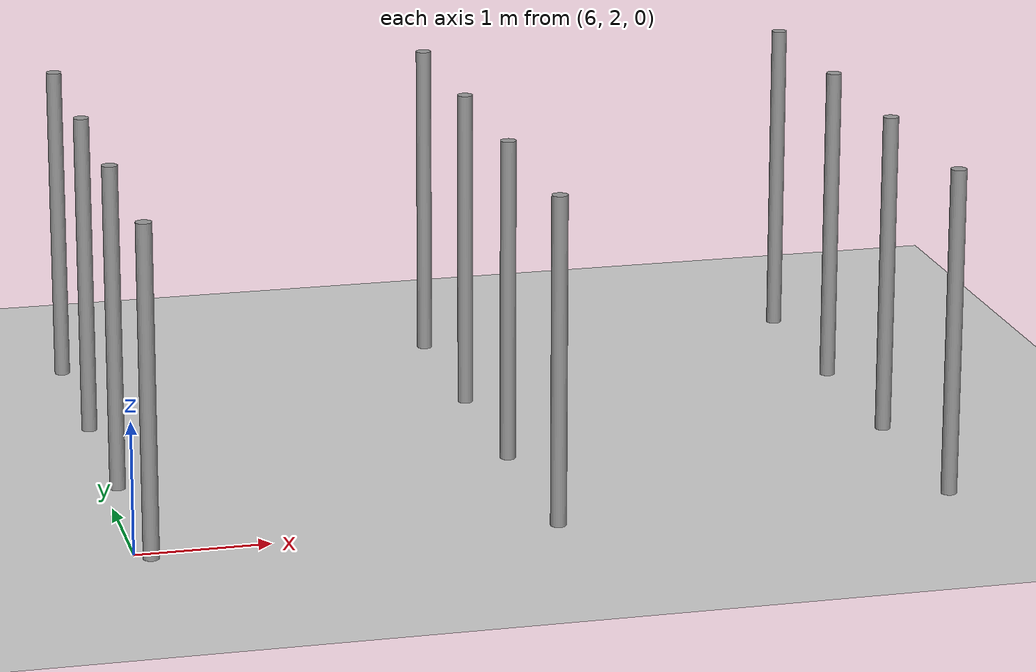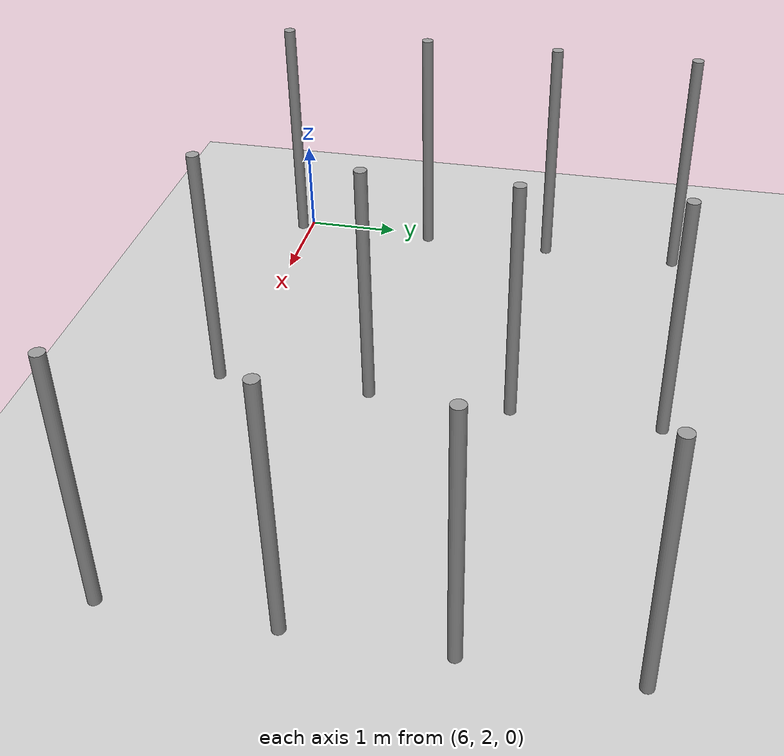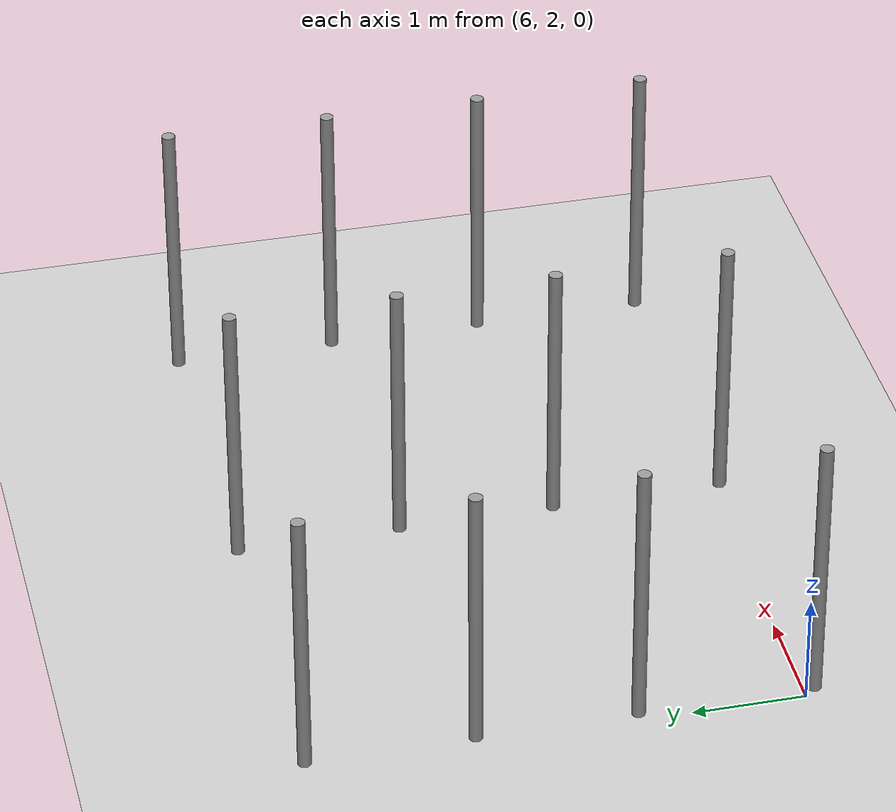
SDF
<sdf version="1.6">
 <world name="default">
  <model name="ground_plane">
   <static>1</static>
   <link name="link">
    <collision name="collision">
     <geometry><plane><normal>0 0 1</normal><size>100 100</size></plane></geometry>
     <surface><friction><ode><mu>100</mu><mu2>50</mu2></ode></friction></surface>
    </collision>
    <visual name="visual">
     <cast_shadows>0</cast_shadows>
     <geometry><plane><normal>0 0 1</normal><size>100 100</size></plane></geometry>
     <material>
      <script><uri>file://media/materials/scripts/gazebo.material</uri><name>Gazebo/Grey</name></script>
     </material>
    </visual>
   </link>
  </model>
  <model name="pole">
   <link name="link_0">
    <inertial>
     <mass>0.0364582</mass>
     <inertia>
      <ixx>0.00312124</ixx>
      <ixy>0</ixy>
      <ixz>0</ixz>
      <iyy>0.00312124</iyy>
      <iyz>0</iyz>
      <izz>0.00016615</izz>
     </inertia>
    </inertial>
    <visual name="visual">
     <geometry><cylinder><radius>0.06</radius><length>2.5</length></cylinder></geometry>
     <material>
      <lighting>1</lighting>
      <script><uri>file://media/materials/scripts/gazebo.material</uri><name>Gazebo/Grey</name></script>
      <ambient>0.3 0.3 0.3 1</ambient>
      <diffuse>0.7 0.7 0.7 1</diffuse>
      <specular>0.01 0.01 0.01 1</specular>
      <emissive>0 0 0 1</emissive>
      <shader type="vertex"><normal_map>__default__</normal_map></shader>
     </material>
    </visual>
    <collision name="collision">
     <geometry><cylinder><radius>0.06</radius><length>2.5</length></cylinder></geometry>
     <surface>
      <friction>
       <ode><mu>1</mu><mu2>1</mu2><fdir1>0 0 0</fdir1><slip1>0</slip1><slip2>0</slip2></ode>
       <torsional>
        <coefficient>1</coefficient>
        <patch_radius>0</patch_radius>
        <surface_radius>0</surface_radius>
        <use_patch_radius>1</use_patch_radius>
        <ode><slip>0</slip></ode>
       </torsional>
      </friction>
      <bounce><restitution_coefficient>0</restitution_coefficient><threshold>1e+06</threshold></bounce>
      <contact>
       <collide_without_contact>0</collide_without_contact>
       <collide_without_contact_bitmask>1</collide_without_contact_bitmask>
       <collide_bitmask>1</collide_bitmask>
       <ode>
        <soft_cfm>0</soft_cfm>
        <soft_erp>0.2</soft_erp>
        <kp>1e+13</kp>
        <kd>1</kd>
        <max_vel>0.01</max_vel>
        <min_depth>0</min_depth>
       </ode>
       <bullet>
        <split_impulse>1</split_impulse>
        <split_impulse_penetration_threshold>-0.01</split_impulse_penetration_threshold>
        <soft_cfm>0</soft_cfm>
        <soft_erp>0.2</soft_erp>
        <kp>1e+13</kp>
        <kd>1</kd>
       </bullet>
      </contact>
     </surface>
    </collision>
   </link>
   <static>0</static>
   <pose>6.10658 1.89886 1.24999 0 -1e-06 -0.054616</pose>
  </model>
  <model name="pole_0">
   <link name="link_0">
    <inertial>
     <mass>0.0364582</mass>
     <inertia>
      <ixx>0.00312124</ixx>
      <ixy>0</ixy>
      <ixz>0</ixz>
      <iyy>0.00312124</iyy>
      <iyz>0</iyz>
      <izz>0.00016615</izz>
     </inertia>
    </inertial>
    <visual name="visual">
     <geometry><cylinder><radius>0.06</radius><length>2.5</length></cylinder></geometry>
     <material>
      <lighting>1</lighting>
      <script><uri>file://media/materials/scripts/gazebo.material</uri><name>Gazebo/Grey</name></script>
      <ambient>0.3 0.3 0.3 1</ambient>
      <diffuse>0.7 0.7 0.7 1</diffuse>
      <specular>0.01 0.01 0.01 1</specular>
      <emissive>0 0 0 1</emissive>
      <shader type="vertex"><normal_map>__default__</normal_map></shader>
     </material>
    </visual>
    <collision name="collision">
     <geometry><cylinder><radius>0.06</radius><length>2.5</length></cylinder></geometry>
     <surface>
      <friction>
       <ode><mu>1</mu><mu2>1</mu2><fdir1>0 0 0</fdir1><slip1>0</slip1><slip2>0</slip2></ode>
       <torsional>
        <coefficient>1</coefficient>
        <patch_radius>0</patch_radius>
        <surface_radius>0</surface_radius>
        <use_patch_radius>1</use_patch_radius>
        <ode><slip>0</slip></ode>
       </torsional>
      </friction>
      <bounce><restitution_coefficient>0</restitution_coefficient><threshold>1e+06</threshold></bounce>
      <contact>
       <collide_without_contact>0</collide_without_contact>
       <collide_without_contact_bitmask>1</collide_without_contact_bitmask>
       <collide_bitmask>1</collide_bitmask>
       <ode>
        <soft_cfm>0</soft_cfm>
        <soft_erp>0.2</soft_erp>
        <kp>1e+13</kp>
        <kd>1</kd>
        <max_vel>0.01</max_vel>
        <min_depth>0</min_depth>
       </ode>
       <bullet>
        <split_impulse>1</split_impulse>
        <split_impulse_penetration_threshold>-0.01</split_impulse_penetration_threshold>
        <soft_cfm>0</soft_cfm>
        <soft_erp>0.2</soft_erp>
        <kp>1e+13</kp>
        <kd>1</kd>
       </bullet>
      </contact>
     </surface>
    </collision>
   </link>
   <static>0</static>
   <pose>6.1066 3.44486 1.25 -1e-06 -0 -0.024772</pose>
  </model>
  <model name="pole_1">
   <link name="link_0">
    <inertial>
     <mass>0.0364582</mass>
     <inertia>
      <ixx>0.00312124</ixx>
      <ixy>0</ixy>
      <ixz>0</ixz>
      <iyy>0.00312124</iyy>
      <iyz>0</iyz>
      <izz>0.00016615</izz>
     </inertia>
    </inertial>
    <visual name="visual">
     <geometry><cylinder><radius>0.06</radius><length>2.5</length></cylinder></geometry>
     <material>
      <lighting>1</lighting>
      <script><uri>file://media/materials/scripts/gazebo.material</uri><name>Gazebo/Grey</name></script>
      <ambient>0.3 0.3 0.3 1</ambient>
      <diffuse>0.7 0.7 0.7 1</diffuse>
      <specular>0.01 0.01 0.01 1</specular>
      <emissive>0 0 0 1</emissive>
      <shader type="vertex"><normal_map>__default__</normal_map></shader>
     </material>
    </visual>
    <collision name="collision">
     <geometry><cylinder><radius>0.06</radius><length>2.5</length></cylinder></geometry>
     <surface>
      <friction>
       <ode><mu>1</mu><mu2>1</mu2><fdir1>0 0 0</fdir1><slip1>0</slip1><slip2>0</slip2></ode>
       <torsional>
        <coefficient>1</coefficient>
        <patch_radius>0</patch_radius>
        <surface_radius>0</surface_radius>
        <use_patch_radius>1</use_patch_radius>
        <ode><slip>0</slip></ode>
       </torsional>
      </friction>
      <bounce><restitution_coefficient>0</restitution_coefficient><threshold>1e+06</threshold></bounce>
      <contact>
       <collide_without_contact>0</collide_without_contact>
       <collide_without_contact_bitmask>1</collide_without_contact_bitmask>
       <collide_bitmask>1</collide_bitmask>
       <ode>
        <soft_cfm>0</soft_cfm>
        <soft_erp>0.2</soft_erp>
        <kp>1e+13</kp>
        <kd>1</kd>
        <max_vel>0.01</max_vel>
        <min_depth>0</min_depth>
       </ode>
       <bullet>
        <split_impulse>1</split_impulse>
        <split_impulse_penetration_threshold>-0.01</split_impulse_penetration_threshold>
        <soft_cfm>0</soft_cfm>
        <soft_erp>0.2</soft_erp>
        <kp>1e+13</kp>
        <kd>1</kd>
       </bullet>
      </contact>
     </surface>
    </collision>
   </link>
   <static>0</static>
   <pose>6.1066 4.85387 1.24999 -0 1e-06 -0.025624</pose>
  </model>
  <model name="pole_2">
   <link name="link_0">
    <inertial>
     <mass>0.0364582</mass>
     <inertia>
      <ixx>0.00312124</ixx>
      <ixy>0</ixy>
      <ixz>0</ixz>
      <iyy>0.00312124</iyy>
      <iyz>0</iyz>
      <izz>0.00016615</izz>
     </inertia>
    </inertial>
    <visual name="visual">
     <geometry><cylinder><radius>0.06</radius><length>2.5</length></cylinder></geometry>
     <material>
      <lighting>1</lighting>
      <script><uri>file://media/materials/scripts/gazebo.material</uri><name>Gazebo/Grey</name></script>
      <ambient>0.3 0.3 0.3 1</ambient>
      <diffuse>0.7 0.7 0.7 1</diffuse>
      <specular>0.01 0.01 0.01 1</specular>
      <emissive>0 0 0 1</emissive>
      <shader type="vertex"><normal_map>__default__</normal_map></shader>
     </material>
    </visual>
    <collision name="collision">
     <geometry><cylinder><radius>0.06</radius><length>2.5</length></cylinder></geometry>
     <surface>
      <friction>
       <ode><mu>1</mu><mu2>1</mu2><fdir1>0 0 0</fdir1><slip1>0</slip1><slip2>0</slip2></ode>
       <torsional>
        <coefficient>1</coefficient>
        <patch_radius>0</patch_radius>
        <surface_radius>0</surface_radius>
        <use_patch_radius>1</use_patch_radius>
        <ode><slip>0</slip></ode>
       </torsional>
      </friction>
      <bounce><restitution_coefficient>0</restitution_coefficient><threshold>1e+06</threshold></bounce>
      <contact>
       <collide_without_contact>0</collide_without_contact>
       <collide_without_contact_bitmask>1</collide_without_contact_bitmask>
       <collide_bitmask>1</collide_bitmask>
       <ode>
        <soft_cfm>0</soft_cfm>
        <soft_erp>0.2</soft_erp>
        <kp>1e+13</kp>
        <kd>1</kd>
        <max_vel>0.01</max_vel>
        <min_depth>0</min_depth>
       </ode>
       <bullet>
        <split_impulse>1</split_impulse>
        <split_impulse_penetration_threshold>-0.01</split_impulse_penetration_threshold>
        <soft_cfm>0</soft_cfm>
        <soft_erp>0.2</soft_erp>
        <kp>1e+13</kp>
        <kd>1</kd>
       </bullet>
      </contact>
     </surface>
    </collision>
   </link>
   <static>0</static>
   <pose>6.10623 6.31684 1.25 -1e-06 -0 -0.031516</pose>
  </model>
  <model name="pole_3">
   <link name="link_0">
    <inertial>
     <mass>0.0364582</mass>
     <inertia>
      <ixx>0.00312124</ixx>
      <ixy>0</ixy>
      <ixz>0</ixz>
      <iyy>0.00312124</iyy>
      <iyz>0</iyz>
      <izz>0.00016615</izz>
     </inertia>
    </inertial>
    <visual name="visual">
     <geometry><cylinder><radius>0.06</radius><length>2.5</length></cylinder></geometry>
     <material>
      <lighting>1</lighting>
      <script><uri>file://media/materials/scripts/gazebo.material</uri><name>Gazebo/Grey</name></script>
      <ambient>0.3 0.3 0.3 1</ambient>
      <diffuse>0.7 0.7 0.7 1</diffuse>
      <specular>0.01 0.01 0.01 1</specular>
      <emissive>0 0 0 1</emissive>
      <shader type="vertex"><normal_map>__default__</normal_map></shader>
     </material>
    </visual>
    <collision name="collision">
     <geometry><cylinder><radius>0.06</radius><length>2.5</length></cylinder></geometry>
     <surface>
      <friction>
       <ode><mu>1</mu><mu2>1</mu2><fdir1>0 0 0</fdir1><slip1>0</slip1><slip2>0</slip2></ode>
       <torsional>
        <coefficient>1</coefficient>
        <patch_radius>0</patch_radius>
        <surface_radius>0</surface_radius>
        <use_patch_radius>1</use_patch_radius>
        <ode><slip>0</slip></ode>
       </torsional>
      </friction>
      <bounce><restitution_coefficient>0</restitution_coefficient><threshold>1e+06</threshold></bounce>
      <contact>
       <collide_without_contact>0</collide_without_contact>
       <collide_without_contact_bitmask>1</collide_without_contact_bitmask>
       <collide_bitmask>1</collide_bitmask>
       <ode>
        <soft_cfm>0</soft_cfm>
        <soft_erp>0.2</soft_erp>
        <kp>1e+13</kp>
        <kd>1</kd>
        <max_vel>0.01</max_vel>
        <min_depth>0</min_depth>
       </ode>
       <bullet>
        <split_impulse>1</split_impulse>
        <split_impulse_penetration_threshold>-0.01</split_impulse_penetration_threshold>
        <soft_cfm>0</soft_cfm>
        <soft_erp>0.2</soft_erp>
        <kp>1e+13</kp>
        <kd>1</kd>
       </bullet>
      </contact>
     </surface>
    </collision>
   </link>
   <static>0</static>
   <pose>12.1067 1.8988 1.25 -1e-06 -0 -0.027672</pose>
  </model>
  <model name="pole_4">
   <link name="link_0">
    <inertial>
     <mass>0.0364582</mass>
     <inertia>
      <ixx>0.00312124</ixx>
      <ixy>0</ixy>
      <ixz>0</ixz>
      <iyy>0.00312124</iyy>
      <iyz>0</iyz>
      <izz>0.00016615</izz>
     </inertia>
    </inertial>
    <visual name="visual">
     <geometry><cylinder><radius>0.06</radius><length>2.5</length></cylinder></geometry>
     <material>
      <lighting>1</lighting>
      <script><uri>file://media/materials/scripts/gazebo.material</uri><name>Gazebo/Grey</name></script>
      <ambient>0.3 0.3 0.3 1</ambient>
      <diffuse>0.7 0.7 0.7 1</diffuse>
      <specular>0.01 0.01 0.01 1</specular>
      <emissive>0 0 0 1</emissive>
      <shader type="vertex"><normal_map>__default__</normal_map></shader>
     </material>
    </visual>
    <collision name="collision">
     <geometry><cylinder><radius>0.06</radius><length>2.5</length></cylinder></geometry>
     <surface>
      <friction>
       <ode><mu>1</mu><mu2>1</mu2><fdir1>0 0 0</fdir1><slip1>0</slip1><slip2>0</slip2></ode>
       <torsional>
        <coefficient>1</coefficient>
        <patch_radius>0</patch_radius>
        <surface_radius>0</surface_radius>
        <use_patch_radius>1</use_patch_radius>
        <ode><slip>0</slip></ode>
       </torsional>
      </friction>
      <bounce><restitution_coefficient>0</restitution_coefficient><threshold>1e+06</threshold></bounce>
      <contact>
       <collide_without_contact>0</collide_without_contact>
       <collide_without_contact_bitmask>1</collide_without_contact_bitmask>
       <collide_bitmask>1</collide_bitmask>
       <ode>
        <soft_cfm>0</soft_cfm>
        <soft_erp>0.2</soft_erp>
        <kp>1e+13</kp>
        <kd>1</kd>
        <max_vel>0.01</max_vel>
        <min_depth>0</min_depth>
       </ode>
       <bullet>
        <split_impulse>1</split_impulse>
        <split_impulse_penetration_threshold>-0.01</split_impulse_penetration_threshold>
        <soft_cfm>0</soft_cfm>
        <soft_erp>0.2</soft_erp>
        <kp>1e+13</kp>
        <kd>1</kd>
       </bullet>
      </contact>
     </surface>
    </collision>
   </link>
   <static>0</static>
   <pose>9.10659 3.44487 1.24999 -1e-06 1e-06 -0.024343</pose>
  </model>
  <model name="pole_5">
   <link name="link_0">
    <inertial>
     <mass>0.0364582</mass>
     <inertia>
      <ixx>0.00312124</ixx>
      <ixy>0</ixy>
      <ixz>0</ixz>
      <iyy>0.00312124</iyy>
      <iyz>0</iyz>
      <izz>0.00016615</izz>
     </inertia>
    </inertial>
    <visual name="visual">
     <geometry><cylinder><radius>0.06</radius><length>2.5</length></cylinder></geometry>
     <material>
      <lighting>1</lighting>
      <script><uri>file://media/materials/scripts/gazebo.material</uri><name>Gazebo/Grey</name></script>
      <ambient>0.3 0.3 0.3 1</ambient>
      <diffuse>0.7 0.7 0.7 1</diffuse>
      <specular>0.01 0.01 0.01 1</specular>
      <emissive>0 0 0 1</emissive>
      <shader type="vertex"><normal_map>__default__</normal_map></shader>
     </material>
    </visual>
    <collision name="collision">
     <geometry><cylinder><radius>0.06</radius><length>2.5</length></cylinder></geometry>
     <surface>
      <friction>
       <ode><mu>1</mu><mu2>1</mu2><fdir1>0 0 0</fdir1><slip1>0</slip1><slip2>0</slip2></ode>
       <torsional>
        <coefficient>1</coefficient>
        <patch_radius>0</patch_radius>
        <surface_radius>0</surface_radius>
        <use_patch_radius>1</use_patch_radius>
        <ode><slip>0</slip></ode>
       </torsional>
      </friction>
      <bounce><restitution_coefficient>0</restitution_coefficient><threshold>1e+06</threshold></bounce>
      <contact>
       <collide_without_contact>0</collide_without_contact>
       <collide_without_contact_bitmask>1</collide_without_contact_bitmask>
       <collide_bitmask>1</collide_bitmask>
       <ode>
        <soft_cfm>0</soft_cfm>
        <soft_erp>0.2</soft_erp>
        <kp>1e+13</kp>
        <kd>1</kd>
        <max_vel>0.01</max_vel>
        <min_depth>0</min_depth>
       </ode>
       <bullet>
        <split_impulse>1</split_impulse>
        <split_impulse_penetration_threshold>-0.01</split_impulse_penetration_threshold>
        <soft_cfm>0</soft_cfm>
        <soft_erp>0.2</soft_erp>
        <kp>1e+13</kp>
        <kd>1</kd>
       </bullet>
      </contact>
     </surface>
    </collision>
   </link>
   <static>0</static>
   <pose>9.10663 4.85395 1.25 -1e-06 2e-06 -0.023796</pose>
  </model>
  <model name="pole_6">
   <link name="link_0">
    <inertial>
     <mass>0.0364582</mass>
     <inertia>
      <ixx>0.00312124</ixx>
      <ixy>0</ixy>
      <ixz>0</ixz>
      <iyy>0.00312124</iyy>
      <iyz>0</iyz>
      <izz>0.00016615</izz>
     </inertia>
    </inertial>
    <visual name="visual">
     <geometry><cylinder><radius>0.06</radius><length>2.5</length></cylinder></geometry>
     <material>
      <lighting>1</lighting>
      <script><uri>file://media/materials/scripts/gazebo.material</uri><name>Gazebo/Grey</name></script>
      <ambient>0.3 0.3 0.3 1</ambient>
      <diffuse>0.7 0.7 0.7 1</diffuse>
      <specular>0.01 0.01 0.01 1</specular>
      <emissive>0 0 0 1</emissive>
      <shader type="vertex"><normal_map>__default__</normal_map></shader>
     </material>
    </visual>
    <collision name="collision">
     <geometry><cylinder><radius>0.06</radius><length>2.5</length></cylinder></geometry>
     <surface>
      <friction>
       <ode><mu>1</mu><mu2>1</mu2><fdir1>0 0 0</fdir1><slip1>0</slip1><slip2>0</slip2></ode>
       <torsional>
        <coefficient>1</coefficient>
        <patch_radius>0</patch_radius>
        <surface_radius>0</surface_radius>
        <use_patch_radius>1</use_patch_radius>
        <ode><slip>0</slip></ode>
       </torsional>
      </friction>
      <bounce><restitution_coefficient>0</restitution_coefficient><threshold>1e+06</threshold></bounce>
      <contact>
       <collide_without_contact>0</collide_without_contact>
       <collide_without_contact_bitmask>1</collide_without_contact_bitmask>
       <collide_bitmask>1</collide_bitmask>
       <ode>
        <soft_cfm>0</soft_cfm>
        <soft_erp>0.2</soft_erp>
        <kp>1e+13</kp>
        <kd>1</kd>
        <max_vel>0.01</max_vel>
        <min_depth>0</min_depth>
       </ode>
       <bullet>
        <split_impulse>1</split_impulse>
        <split_impulse_penetration_threshold>-0.01</split_impulse_penetration_threshold>
        <soft_cfm>0</soft_cfm>
        <soft_erp>0.2</soft_erp>
        <kp>1e+13</kp>
        <kd>1</kd>
       </bullet>
      </contact>
     </surface>
    </collision>
   </link>
   <static>0</static>
   <pose>9.10662 6.31682 1.24999 -1e-06 3e-06 -0.046766</pose>
  </model>
  <model name="pole_7">
   <link name="link_0">
    <inertial>
     <mass>0.0364582</mass>
     <inertia>
      <ixx>0.00312124</ixx>
      <ixy>0</ixy>
      <ixz>0</ixz>
      <iyy>0.00312124</iyy>
      <iyz>0</iyz>
      <izz>0.00016615</izz>
     </inertia>
    </inertial>
    <visual name="visual">
     <geometry><cylinder><radius>0.06</radius><length>2.5</length></cylinder></geometry>
     <material>
      <lighting>1</lighting>
      <script><uri>file://media/materials/scripts/gazebo.material</uri><name>Gazebo/Grey</name></script>
      <ambient>0.3 0.3 0.3 1</ambient>
      <diffuse>0.7 0.7 0.7 1</diffuse>
      <specular>0.01 0.01 0.01 1</specular>
      <emissive>0 0 0 1</emissive>
      <shader type="vertex"><normal_map>__default__</normal_map></shader>
     </material>
    </visual>
    <collision name="collision">
     <geometry><cylinder><radius>0.06</radius><length>2.5</length></cylinder></geometry>
     <surface>
      <friction>
       <ode><mu>1</mu><mu2>1</mu2><fdir1>0 0 0</fdir1><slip1>0</slip1><slip2>0</slip2></ode>
       <torsional>
        <coefficient>1</coefficient>
        <patch_radius>0</patch_radius>
        <surface_radius>0</surface_radius>
        <use_patch_radius>1</use_patch_radius>
        <ode><slip>0</slip></ode>
       </torsional>
      </friction>
      <bounce><restitution_coefficient>0</restitution_coefficient><threshold>1e+06</threshold></bounce>
      <contact>
       <collide_without_contact>0</collide_without_contact>
       <collide_without_contact_bitmask>1</collide_without_contact_bitmask>
       <collide_bitmask>1</collide_bitmask>
       <ode>
        <soft_cfm>0</soft_cfm>
        <soft_erp>0.2</soft_erp>
        <kp>1e+13</kp>
        <kd>1</kd>
        <max_vel>0.01</max_vel>
        <min_depth>0</min_depth>
       </ode>
       <bullet>
        <split_impulse>1</split_impulse>
        <split_impulse_penetration_threshold>-0.01</split_impulse_penetration_threshold>
        <soft_cfm>0</soft_cfm>
        <soft_erp>0.2</soft_erp>
        <kp>1e+13</kp>
        <kd>1</kd>
       </bullet>
      </contact>
     </surface>
    </collision>
   </link>
   <static>0</static>
   <pose>9.10656 1.89885 1.25 -1e-06 1e-06 -0.017106</pose>
  </model>
  <model name="pole_8">
   <link name="link_0">
    <inertial>
     <mass>0.0364582</mass>
     <inertia>
      <ixx>0.00312124</ixx>
      <ixy>0</ixy>
      <ixz>0</ixz>
      <iyy>0.00312124</iyy>
      <iyz>0</iyz>
      <izz>0.00016615</izz>
     </inertia>
    </inertial>
    <visual name="visual">
     <geometry><cylinder><radius>0.06</radius><length>2.5</length></cylinder></geometry>
     <material>
      <lighting>1</lighting>
      <script><uri>file://media/materials/scripts/gazebo.material</uri><name>Gazebo/Grey</name></script>
      <ambient>0.3 0.3 0.3 1</ambient>
      <diffuse>0.7 0.7 0.7 1</diffuse>
      <specular>0.01 0.01 0.01 1</specular>
      <emissive>0 0 0 1</emissive>
      <shader type="vertex"><normal_map>__default__</normal_map></shader>
     </material>
    </visual>
    <collision name="collision">
     <geometry><cylinder><radius>0.06</radius><length>2.5</length></cylinder></geometry>
     <surface>
      <friction>
       <ode><mu>1</mu><mu2>1</mu2><fdir1>0 0 0</fdir1><slip1>0</slip1><slip2>0</slip2></ode>
       <torsional>
        <coefficient>1</coefficient>
        <patch_radius>0</patch_radius>
        <surface_radius>0</surface_radius>
        <use_patch_radius>1</use_patch_radius>
        <ode><slip>0</slip></ode>
       </torsional>
      </friction>
      <bounce><restitution_coefficient>0</restitution_coefficient><threshold>1e+06</threshold></bounce>
      <contact>
       <collide_without_contact>0</collide_without_contact>
       <collide_without_contact_bitmask>1</collide_without_contact_bitmask>
       <collide_bitmask>1</collide_bitmask>
       <ode>
        <soft_cfm>0</soft_cfm>
        <soft_erp>0.2</soft_erp>
        <kp>1e+13</kp>
        <kd>1</kd>
        <max_vel>0.01</max_vel>
        <min_depth>0</min_depth>
       </ode>
       <bullet>
        <split_impulse>1</split_impulse>
        <split_impulse_penetration_threshold>-0.01</split_impulse_penetration_threshold>
        <soft_cfm>0</soft_cfm>
        <soft_erp>0.2</soft_erp>
        <kp>1e+13</kp>
        <kd>1</kd>
       </bullet>
      </contact>
     </surface>
    </collision>
   </link>
   <static>0</static>
   <pose>12.1067 3.44485 1.25 -1e-06 -0 -0.021964</pose>
  </model>
  <model name="pole_9">
   <link name="link_0">
    <inertial>
     <mass>0.0364582</mass>
     <inertia>
      <ixx>0.00312124</ixx>
      <ixy>0</ixy>
      <ixz>0</ixz>
      <iyy>0.00312124</iyy>
      <iyz>0</iyz>
      <izz>0.00016615</izz>
     </inertia>
    </inertial>
    <visual name="visual">
     <geometry><cylinder><radius>0.06</radius><length>2.5</length></cylinder></geometry>
     <material>
      <lighting>1</lighting>
      <script><uri>file://media/materials/scripts/gazebo.material</uri><name>Gazebo/Grey</name></script>
      <ambient>0.3 0.3 0.3 1</ambient>
      <diffuse>0.7 0.7 0.7 1</diffuse>
      <specular>0.01 0.01 0.01 1</specular>
      <emissive>0 0 0 1</emissive>
      <shader type="vertex"><normal_map>__default__</normal_map></shader>
     </material>
    </visual>
    <collision name="collision">
     <geometry><cylinder><radius>0.06</radius><length>2.5</length></cylinder></geometry>
     <surface>
      <friction>
       <ode><mu>1</mu><mu2>1</mu2><fdir1>0 0 0</fdir1><slip1>0</slip1><slip2>0</slip2></ode>
       <torsional>
        <coefficient>1</coefficient>
        <patch_radius>0</patch_radius>
        <surface_radius>0</surface_radius>
        <use_patch_radius>1</use_patch_radius>
        <ode><slip>0</slip></ode>
       </torsional>
      </friction>
      <bounce><restitution_coefficient>0</restitution_coefficient><threshold>1e+06</threshold></bounce>
      <contact>
       <collide_without_contact>0</collide_without_contact>
       <collide_without_contact_bitmask>1</collide_without_contact_bitmask>
       <collide_bitmask>1</collide_bitmask>
       <ode>
        <soft_cfm>0</soft_cfm>
        <soft_erp>0.2</soft_erp>
        <kp>1e+13</kp>
        <kd>1</kd>
        <max_vel>0.01</max_vel>
        <min_depth>0</min_depth>
       </ode>
       <bullet>
        <split_impulse>1</split_impulse>
        <split_impulse_penetration_threshold>-0.01</split_impulse_penetration_threshold>
        <soft_cfm>0</soft_cfm>
        <soft_erp>0.2</soft_erp>
        <kp>1e+13</kp>
        <kd>1</kd>
       </bullet>
      </contact>
     </surface>
    </collision>
   </link>
   <static>0</static>
   <pose>12.1067 4.8539 1.25 -1e-06 -1e-06 -0.025555</pose>
  </model>
  <model name="pole_10">
   <link name="link_0">
    <inertial>
     <mass>0.0364582</mass>
     <inertia>
      <ixx>0.00312124</ixx>
      <ixy>0</ixy>
      <ixz>0</ixz>
      <iyy>0.00312124</iyy>
      <iyz>0</iyz>
      <izz>0.00016615</izz>
     </inertia>
    </inertial>
    <visual name="visual">
     <geometry><cylinder><radius>0.06</radius><length>2.5</length></cylinder></geometry>
     <material>
      <lighting>1</lighting>
      <script><uri>file://media/materials/scripts/gazebo.material</uri><name>Gazebo/Grey</name></script>
      <ambient>0.3 0.3 0.3 1</ambient>
      <diffuse>0.7 0.7 0.7 1</diffuse>
      <specular>0.01 0.01 0.01 1</specular>
      <emissive>0 0 0 1</emissive>
      <shader type="vertex"><normal_map>__default__</normal_map></shader>
     </material>
    </visual>
    <collision name="collision">
     <geometry><cylinder><radius>0.06</radius><length>2.5</length></cylinder></geometry>
     <surface>
      <friction>
       <ode><mu>1</mu><mu2>1</mu2><fdir1>0 0 0</fdir1><slip1>0</slip1><slip2>0</slip2></ode>
       <torsional>
        <coefficient>1</coefficient>
        <patch_radius>0</patch_radius>
        <surface_radius>0</surface_radius>
        <use_patch_radius>1</use_patch_radius>
        <ode><slip>0</slip></ode>
       </torsional>
      </friction>
      <bounce><restitution_coefficient>0</restitution_coefficient><threshold>1e+06</threshold></bounce>
      <contact>
       <collide_without_contact>0</collide_without_contact>
       <collide_without_contact_bitmask>1</collide_without_contact_bitmask>
       <collide_bitmask>1</collide_bitmask>
       <ode>
        <soft_cfm>0</soft_cfm>
        <soft_erp>0.2</soft_erp>
        <kp>1e+13</kp>
        <kd>1</kd>
        <max_vel>0.01</max_vel>
        <min_depth>0</min_depth>
       </ode>
       <bullet>
        <split_impulse>1</split_impulse>
        <split_impulse_penetration_threshold>-0.01</split_impulse_penetration_threshold>
        <soft_cfm>0</soft_cfm>
        <soft_erp>0.2</soft_erp>
        <kp>1e+13</kp>
        <kd>1</kd>
       </bullet>
      </contact>
     </surface>
    </collision>
   </link>
   <static>0</static>
   <pose>12.1066 6.3168 1.24999 0 -1e-06 -0.022676</pose>
  </model>
 </world>
</sdf>
